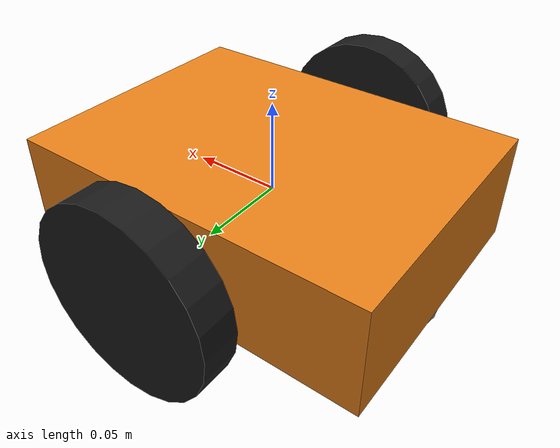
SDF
<?xml version="1.0" ?>
<sdf version="1.9">
  <model name="ir_robot">
    <link name="base_link">
      <inertial><mass>2.0</mass><inertia><ixx>0.05</ixx><iyy>0.05</iyy><izz>0.05</izz></inertia></inertial>
      <collision name="col"><geometry><box><size>0.2 0.15 0.06</size></box></geometry></collision>
      <visual name="vis">
        <geometry><box><size>0.2 0.15 0.06</size></box></geometry>
        <material><ambient>0.9 0.5 0.1 1</ambient><diffuse>0.9 0.5 0.1 1</diffuse></material>
      </visual>
    </link>
    <link name="left_wheel">
      <pose>0 0.1 0 -1.5707 0 0</pose>
      <inertial><mass>0.5</mass><inertia><ixx>0.005</ixx><iyy>0.005</iyy><izz>0.005</izz></inertia></inertial>
      <collision name="col"><geometry><cylinder><radius>0.05</radius><length>0.02</length></cylinder></geometry></collision>
      <visual name="vis">
        <geometry><cylinder><radius>0.05</radius><length>0.02</length></cylinder></geometry>
        <material><ambient>0.1 0.1 0.1 1</ambient><diffuse>0.1 0.1 0.1 1</diffuse></material>
      </visual>
    </link>
    <link name="right_wheel">
      <pose>0 -0.1 0 -1.5707 0 0</pose>
      <inertial><mass>0.5</mass><inertia><ixx>0.005</ixx><iyy>0.005</iyy><izz>0.005</izz></inertia></inertial>
      <collision name="col"><geometry><cylinder><radius>0.05</radius><length>0.02</length></cylinder></geometry></collision>
      <visual name="vis">
        <geometry><cylinder><radius>0.05</radius><length>0.02</length></cylinder></geometry>
        <material><ambient>0.1 0.1 0.1 1</ambient><diffuse>0.1 0.1 0.1 1</diffuse></material>
      </visual>
    </link>
    <link name="caster_front">
      <pose>0.08 0 -0.03 0 0 0</pose>
      <inertial><mass>0.1</mass><inertia><ixx>0.0001</ixx><iyy>0.0001</iyy><izz>0.0001</izz></inertia></inertial>
      <collision name="col"><geometry><sphere><radius>0.02</radius></sphere></geometry><surface><friction><ode><mu>0</mu><mu2>0</mu2></ode></friction></surface></collision>
      <visual name="vis"><geometry><sphere><radius>0.02</radius></sphere></geometry><material><ambient>0.5 0.5 0.5 1</ambient></material></visual>
    </link>
    <link name="caster_rear">
      <pose>-0.08 0 -0.03 0 0 0</pose>
      <inertial><mass>0.1</mass><inertia><ixx>0.0001</ixx><iyy>0.0001</iyy><izz>0.0001</izz></inertia></inertial>
      <collision name="col"><geometry><sphere><radius>0.02</radius></sphere></geometry><surface><friction><ode><mu>0</mu><mu2>0</mu2></ode></friction></surface></collision>
      <visual name="vis"><geometry><sphere><radius>0.02</radius></sphere></geometry><material><ambient>0.5 0.5 0.5 1</ambient></material></visual>
    </link>
    <link name="ir_camera_link">
      <pose>0.09 0 -0.025 0 1.5707 0</pose>
      <inertial><mass>0.01</mass><inertia><ixx>0.0001</ixx><iyy>0.0001</iyy><izz>0.0001</izz></inertia></inertial>
      <sensor name="ir_array_camera" type="camera">
        <topic>/camera/image_raw</topic>
        <update_rate>30</update_rate>
        <camera>
          <horizontal_fov>0.6</horizontal_fov>
          <image><width>160</width><height>120</height><format>R8G8B8</format></image>
          <clip><near>0.01</near><far>1.0</far></clip>
        </camera>
        <gz_frame_id>ir_camera_link</gz_frame_id>
      </sensor>
    </link>
    <joint name="left_wheel_joint" type="revolute">
      <parent>base_link</parent><child>left_wheel</child><axis><xyz>0 0 1</xyz></axis>
    </joint>
    <joint name="right_wheel_joint" type="revolute">
      <parent>base_link</parent><child>right_wheel</child><axis><xyz>0 0 1</xyz></axis>
    </joint>
    <joint name="caster_front_joint" type="ball"><parent>base_link</parent><child>caster_front</child></joint>
    <joint name="caster_rear_joint"  type="ball"><parent>base_link</parent><child>caster_rear</child></joint>
    <joint name="ir_camera_joint" type="fixed"><parent>base_link</parent><child>ir_camera_link</child></joint>
    <plugin filename="gz-sim-diff-drive-system" name="gz::sim::systems::DiffDrive">
      <left_joint>left_wheel_joint</left_joint>
      <right_joint>right_wheel_joint</right_joint>
      <wheel_separation>0.2</wheel_separation>
      <wheel_radius>0.05</wheel_radius>
      <odom_publish_frequency>10</odom_publish_frequency>
      <topic>/cmd_vel</topic>
      <odom_topic>/odom</odom_topic>
      <frame_id>odom</frame_id>
      <child_frame_id>base_link</child_frame_id>
    </plugin>
  </model>
</sdf>
